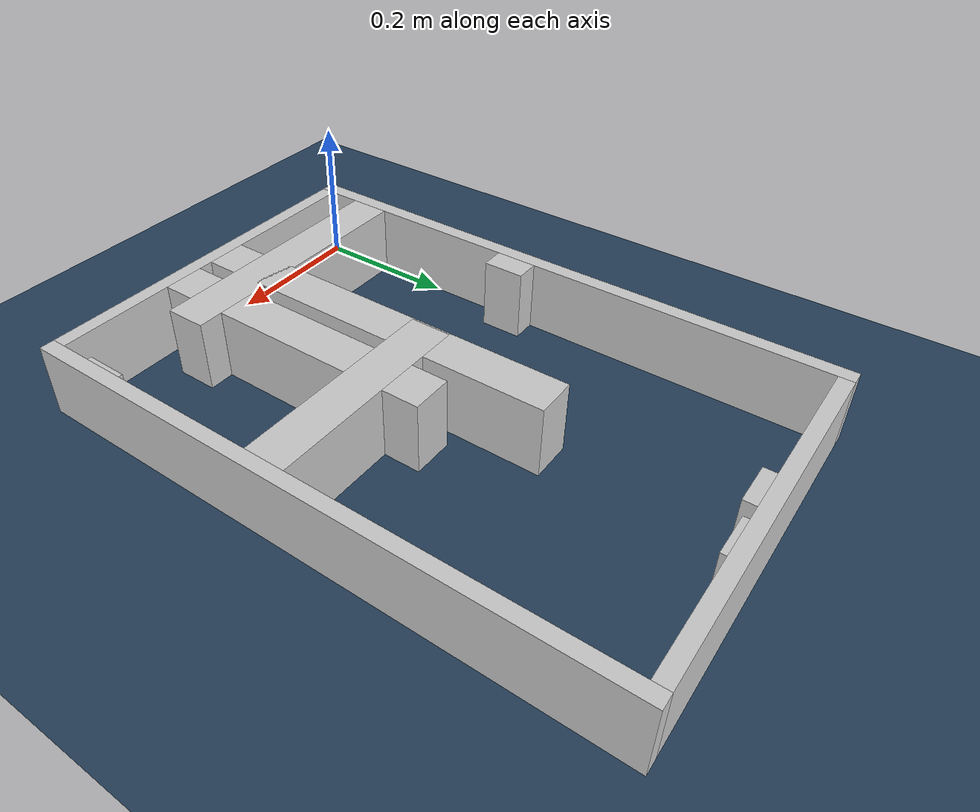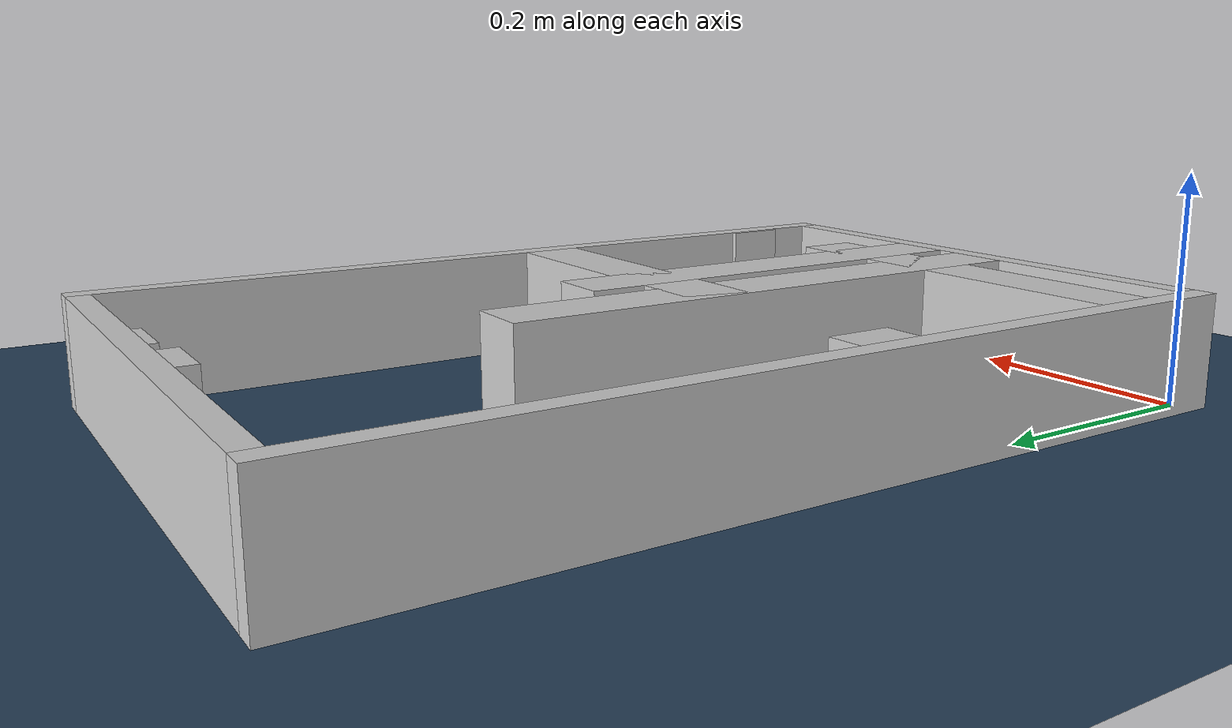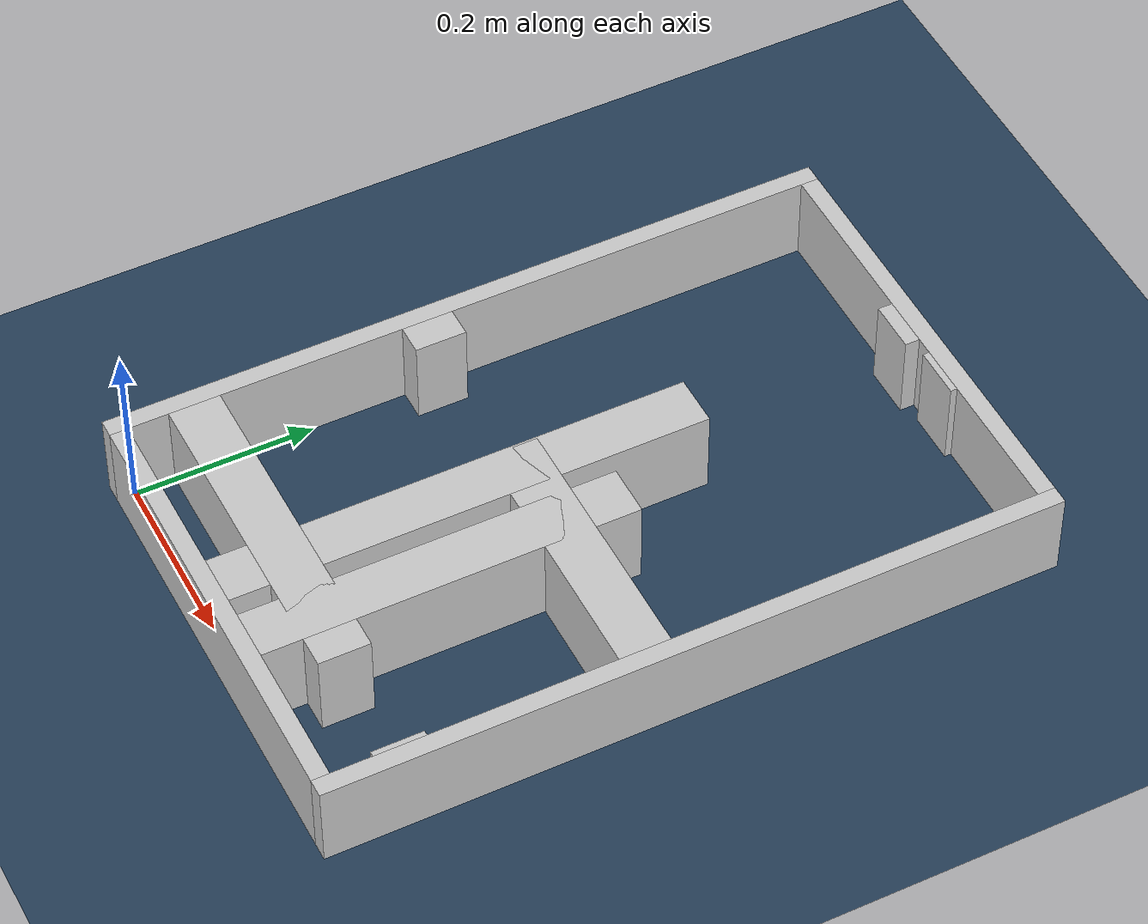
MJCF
<?xml version="1.0" ?>
<mujoco model="generated_real_template">
  <compiler angle="degree"/>
  <option timestep="0.002" integrator="implicitfast" iterations="100" cone="elliptic"/>
  <default>
    <geom density="1"/>
  </default>
  <asset>
    <texture builtin="gradient" height="3072" rgb1="0.3 0.5 0.7" rgb2="0 0 0" type="skybox" width="512"/>
    <texture builtin="checker" height="300" mark="edge" markrgb="0.8 0.8 0.8" name="groundplane" rgb1="0.2 0.3 0.4" rgb2="0.1 0.2 0.3" type="2d" width="300"/>
    <material name="groundplane" reflectance="0.2" texrepeat="5 5" texture="groundplane" texuniform="true"/>
  </asset>
  <worldbody>
    <light dir="0 0 -1" directional="true" pos="0 0 1.5"/>
    <geom name="floor" type="plane" condim="4" friction="0.5 0.005 0.001" material="groundplane" size="0 0 0.05"/>
    <body name="walls">
      <geom name="wall_boundary_left" type="box" condim="4" friction="1.0 0.005 0.0001" rgba="0.8 0.8 0.8 1" pos="-0.010000 0.387500 0.050000" euler="0 0 0.000000" size="0.010000 0.407500 0.050000"/>
      <geom name="wall_boundary_right" type="box" condim="4" friction="1.0 0.005 0.0001" rgba="0.8 0.8 0.8 1" pos="0.500000 0.387500 0.050000" euler="0 0 0.000000" size="0.010000 0.407500 0.050000"/>
      <geom name="wall_boundary_bottom" type="box" condim="4" friction="1.0 0.005 0.0001" rgba="0.8 0.8 0.8 1" pos="0.245000 -0.010000 0.050000" euler="0 0 0.000000" size="0.245000 0.010000 0.050000"/>
      <geom name="wall_boundary_top" type="box" condim="4" friction="1.0 0.005 0.0001" rgba="0.8 0.8 0.8 1" pos="0.245000 0.785000 0.050000" euler="0 0 0.000000" size="0.245000 0.010000 0.050000"/>
      <geom name="wall_inner_1_1" type="box" condim="4" friction="1.0 0.005 0.0001" rgba="0.8 0.8 0.8 1" pos="0.016713 0.334678 0.050000" euler="0 0 0.000000" size="0.016713 0.028500 0.050000"/>
      <geom name="wall_inner_1_2" type="box" condim="4" friction="1.0 0.005 0.0001" rgba="0.8 0.8 0.8 1" pos="0.343937 0.334678 0.050000" euler="0 0 0.000000" size="0.146063 0.028500 0.050000"/>
      <geom name="wall_inner_2_1" type="box" condim="4" friction="1.0 0.005 0.0001" rgba="0.8 0.8 0.8 1" pos="0.301413 0.207008 0.050000" euler="0 0 90.000000" size="0.207008 0.028500 0.050000"/>
      <geom name="wall_inner_2_2" type="box" condim="4" friction="1.0 0.005 0.0001" rgba="0.8 0.8 0.8 1" pos="0.301413 0.771315 0.050000" euler="0 0 90.000000" size="0.003685 0.028500 0.050000"/>
      <geom name="wall_inner_3_1" type="box" condim="4" friction="1.0 0.005 0.0001" rgba="0.8 0.8 0.8 1" pos="0.224279 0.265472 0.050000" euler="0 0 90.000000" size="0.265472 0.028500 0.050000"/>
      <geom name="wall_inner_3_2" type="box" condim="4" friction="1.0 0.005 0.0001" rgba="0.8 0.8 0.8 1" pos="0.224279 0.766809 0.050000" euler="0 0 90.000000" size="0.008191 0.028500 0.050000"/>
      <geom name="wall_inner_4_1" type="box" condim="4" friction="1.0 0.005 0.0001" rgba="0.8 0.8 0.8 1" pos="0.182282 0.073087 0.050000" euler="0 0 0.000000" size="0.182282 0.028500 0.050000"/>
      <geom name="wall_inner_4_2" type="box" condim="4" friction="1.0 0.005 0.0001" rgba="0.8 0.8 0.8 1" pos="0.487198 0.073087 0.050000" euler="0 0 0.000000" size="0.002802 0.028500 0.050000"/>
    </body>
  </worldbody>
</mujoco>
